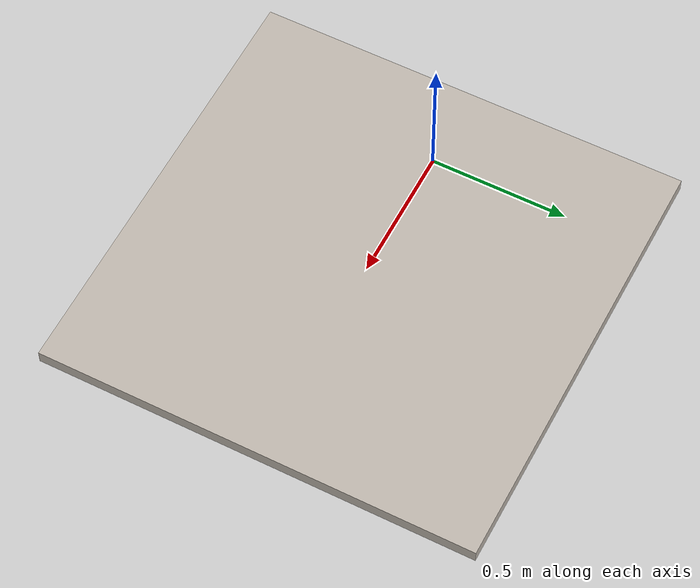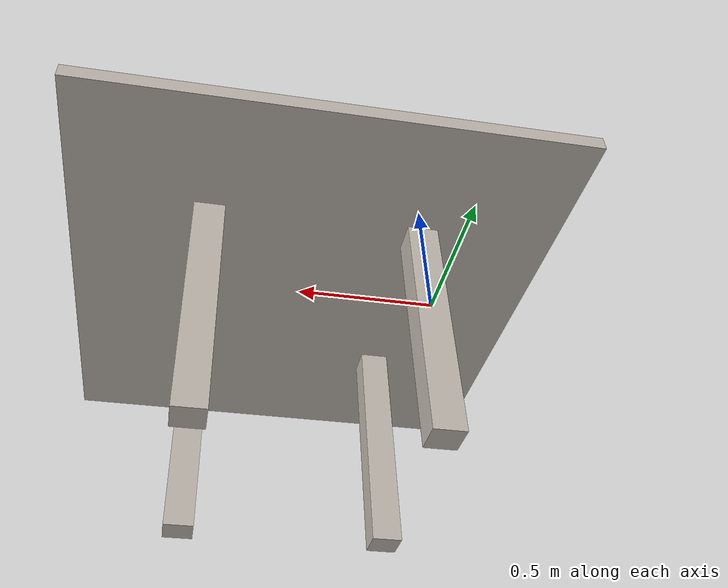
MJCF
<mujoco model="table_mount">
  <asset>
    <!-- ceramic table texture and material-->
    <texture file="../textures/ceramic.png" type="cube" name="tex-ceramic"/>
    <material name="table_ceramic" reflectance="0.0" shininess="0.0" specular="0.2" texrepeat="1 1" texture="tex-ceramic" />
    <!-- steel legs -->
    <texture file="../textures/steel-brushed.png" type="cube" name="tex-steel-brushed"/>
    <material name="table_legs_metal" reflectance="0.8" shininess="0.8" texrepeat="1 1" texture="tex-steel-brushed" />
  </asset>
  <worldbody>
    <!-- Table body -->
    <body name="table" pos="0.5 0 0.0">
      <geom name="table_top" pos="0 0 0" size="0.8 0.8 0.025" type="box" material="table_ceramic" />
      <body name="table_legs" pos="0 0 0">
        <geom name="table_leg1" pos="0.35 0.35 -0.4" size="0.05 0.05 0.4" type="box" material="table_legs_metal" />
        <geom name="table_leg2" pos="-0.35 0.35 -0.4" size="0.05 0.05 0.4" type="box" material="table_legs_metal" />
        <geom name="table_leg3" pos="0.35 -0.35 -0.4" size="0.05 0.05 0.4" type="box" material="table_legs_metal" />
        <geom name="table_leg4" pos="-0.35 -0.35 -0.4" size="0.05 0.05 0.4" type="box" material="table_legs_metal" />
      </body>
    </body>
  </worldbody>
</mujoco>
